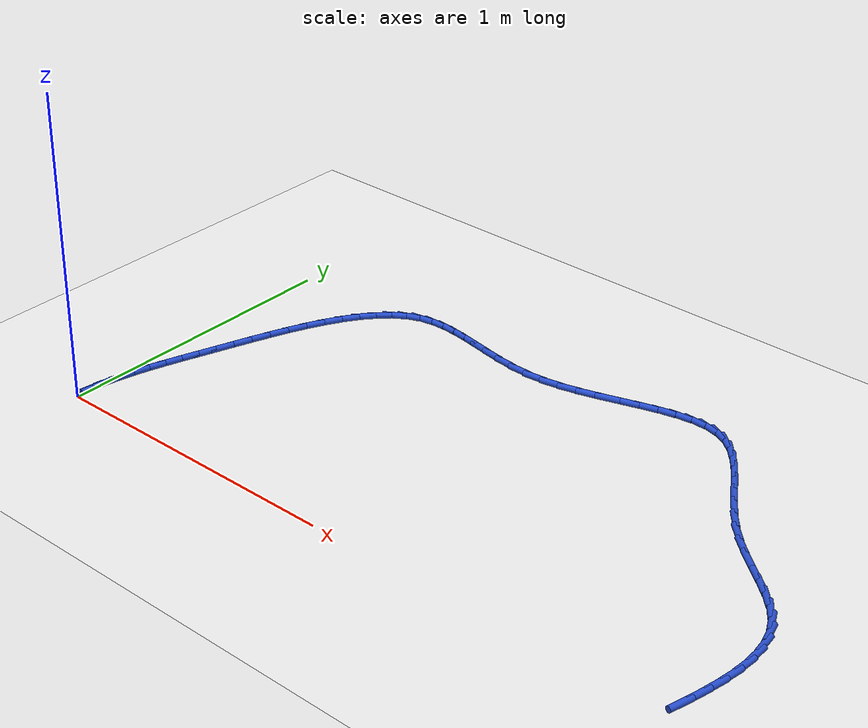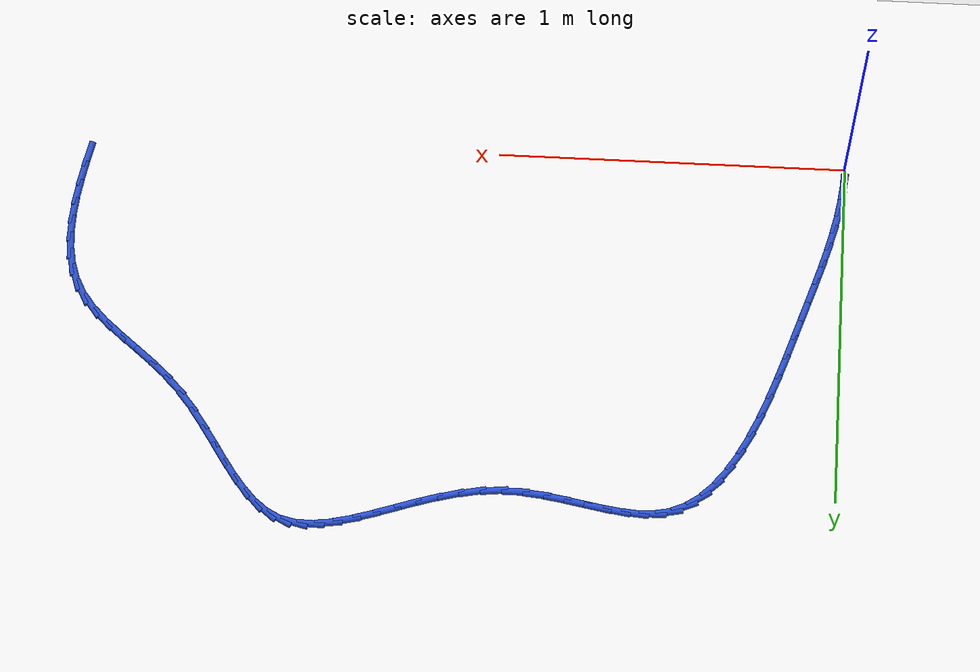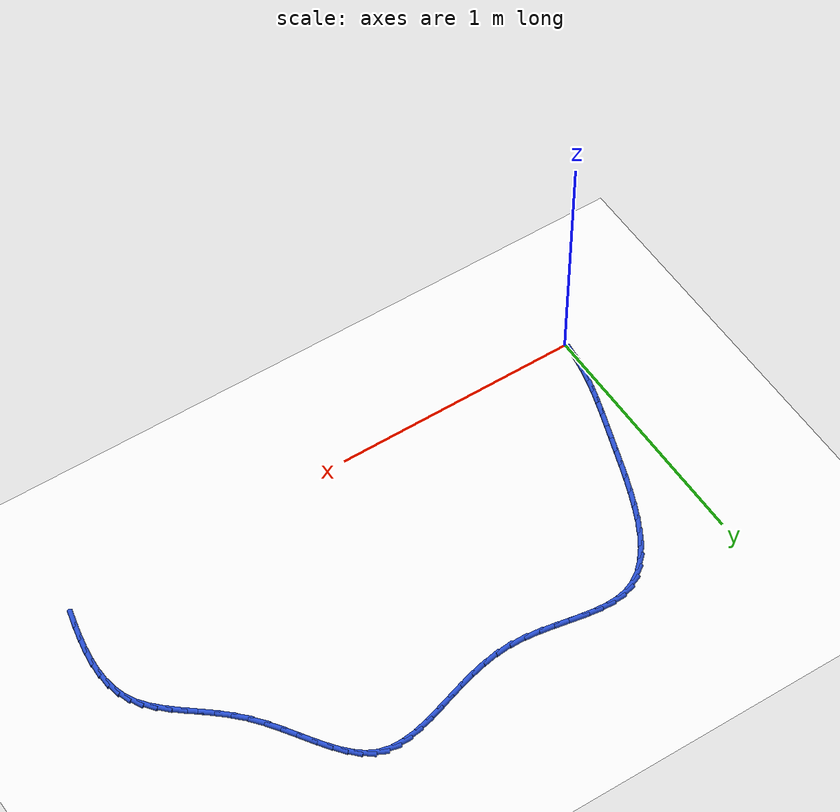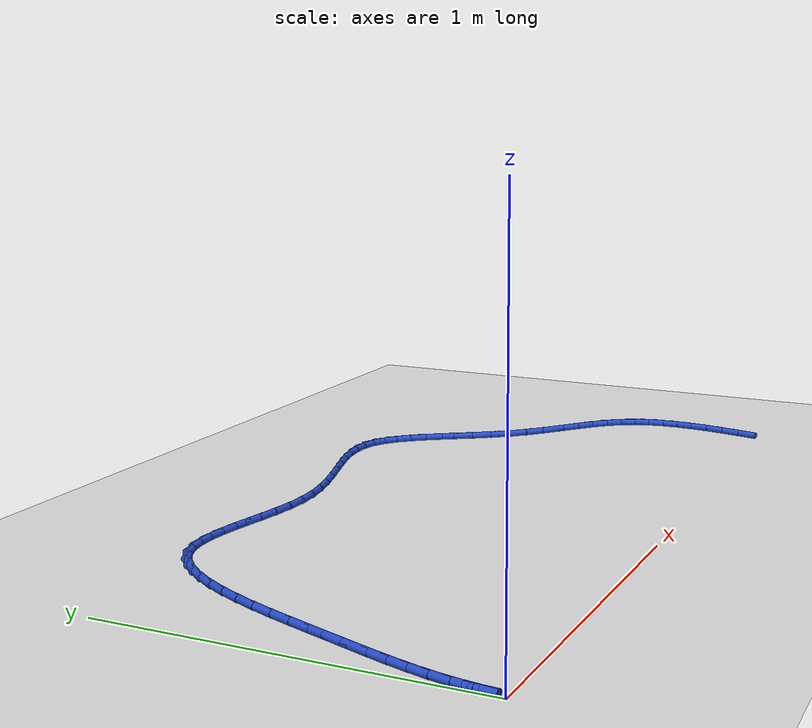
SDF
<sdf version="1.6">
 <world name="default">
  <model name="ground_plane">
   <static>1</static>
   <link name="link">
    <collision name="collision">
     <geometry><plane><normal>0 0 1</normal><size>100 100</size></plane></geometry>
     <surface><friction><ode><mu>100</mu><mu2>50</mu2></ode></friction></surface>
    </collision>
    <visual name="visual">
     <cast_shadows>0</cast_shadows>
     <geometry><plane><normal>0 0 1</normal><size>100 100</size></plane></geometry>
     <material>
      <script><uri>file://media/materials/scripts/gazebo.material</uri><name>Gazebo/WhiteGlow</name></script>
     </material>
    </visual>
   </link>
  </model>
  <model name="line">
   <link name="link_1">
    <pose>0.00370241914661093 0.053599085412505715 0.01 0 1.57 1.4375251185656093</pose>
    <collision name="collision">
     <geometry><cylinder><radius>0.01</radius><length>0.08</length></cylinder></geometry>
    </collision>
    <visual name="visual">
     <material>
      <script><name>Gazebo/Blue</name><uri>file://media/materials/scripts/gazebo.material</uri></script>
     </material>
     <geometry><cylinder><radius>0.01</radius><length>0.08</length></cylinder></geometry>
    </visual>
   </link>
   <link name="link_2">
    <pose>0.01079210150440693 0.10648116606670326 0.01 0 1.57 1.3811579953006534</pose>
    <collision name="collision">
     <geometry><cylinder><radius>0.01</radius><length>0.08</length></cylinder></geometry>
    </collision>
    <visual name="visual">
     <material>
      <script><name>Gazebo/Blue</name><uri>file://media/materials/scripts/gazebo.material</uri></script>
     </material>
     <geometry><cylinder><radius>0.01</radius><length>0.08</length></cylinder></geometry>
    </visual>
   </link>
   <link name="link_3">
    <pose>0.020874751084565796 0.15901006306544285 0.01 0 1.57 1.3339590005698805</pose>
    <collision name="collision">
     <geometry><cylinder><radius>0.01</radius><length>0.08</length></cylinder></geometry>
    </collision>
    <visual name="visual">
     <material>
      <script><name>Gazebo/Blue</name><uri>file://media/materials/scripts/gazebo.material</uri></script>
     </material>
     <geometry><cylinder><radius>0.01</radius><length>0.08</length></cylinder></geometry>
    </visual>
   </link>
   <link name="link_4">
    <pose>0.03355607189826538 0.21154959751157462 0.01 0 1.57 1.2965652068433773</pose>
    <collision name="collision">
     <geometry><cylinder><radius>0.01</radius><length>0.08</length></cylinder></geometry>
    </collision>
    <visual name="visual">
     <material>
      <script><name>Gazebo/Blue</name><uri>file://media/materials/scripts/gazebo.material</uri></script>
     </material>
     <geometry><cylinder><radius>0.01</radius><length>0.08</length></cylinder></geometry>
    </visual>
   </link>
   <link name="link_5">
    <pose>0.04844176795668357 0.26446359050794893 0.01 0 1.57 1.269110035139979</pose>
    <collision name="collision">
     <geometry><cylinder><radius>0.01</radius><length>0.08</length></cylinder></geometry>
    </collision>
    <visual name="visual">
     <material>
      <script><name>Gazebo/Blue</name><uri>file://media/materials/scripts/gazebo.material</uri></script>
     </material>
     <geometry><cylinder><radius>0.01</radius><length>0.08</length></cylinder></geometry>
    </visual>
   </link>
   <link name="link_6">
    <pose>0.06513754327099819 0.3181158631574158 0.01 0 1.57 1.251347061826769</pose>
    <collision name="collision">
     <geometry><cylinder><radius>0.01</radius><length>0.08</length></cylinder></geometry>
    </collision>
    <visual name="visual">
     <material>
      <script><name>Gazebo/Blue</name><uri>file://media/materials/scripts/gazebo.material</uri></script>
     </material>
     <geometry><cylinder><radius>0.01</radius><length>0.08</length></cylinder></geometry>
    </visual>
   </link>
   <link name="link_7">
    <pose>0.08324910185238708 0.37287023656282536 0.01 0 1.57 1.2427685363836052</pose>
    <collision name="collision">
     <geometry><cylinder><radius>0.01</radius><length>0.08</length></cylinder></geometry>
    </collision>
    <visual name="visual">
     <material>
      <script><name>Gazebo/Blue</name><uri>file://media/materials/scripts/gazebo.material</uri></script>
     </material>
     <geometry><cylinder><radius>0.01</radius><length>0.08</length></cylinder></geometry>
    </visual>
   </link>
   <link name="link_8">
    <pose>0.10238214771202817 0.42909053182702805 0.01 0 1.57 1.2425422428019877</pose>
    <collision name="collision">
     <geometry><cylinder><radius>0.01</radius><length>0.08</length></cylinder></geometry>
    </collision>
    <visual name="visual">
     <material>
      <script><name>Gazebo/Blue</name><uri>file://media/materials/scripts/gazebo.material</uri></script>
     </material>
     <geometry><cylinder><radius>0.01</radius><length>0.08</length></cylinder></geometry>
    </visual>
   </link>
   <link name="link_9">
    <pose>0.12214847034425556 0.4871285746936168 0.01 0 1.57 1.2433390880580024</pose>
    <collision name="collision">
     <geometry><cylinder><radius>0.01</radius><length>0.08</length></cylinder></geometry>
    </collision>
    <visual name="visual">
     <material>
      <script><name>Gazebo/Blue</name><uri>file://media/materials/scripts/gazebo.material</uri></script>
     </material>
     <geometry><cylinder><radius>0.01</radius><length>0.08</length></cylinder></geometry>
    </visual>
   </link>
   <link name="link_10">
    <pose>0.14242358597843852 0.5468163477234539 0.01 0 1.57 1.2362287823148563</pose>
    <collision name="collision">
     <geometry><cylinder><radius>0.01</radius><length>0.08</length></cylinder></geometry>
    </collision>
    <visual name="visual">
     <material>
      <script><name>Gazebo/Blue</name><uri>file://media/materials/scripts/gazebo.material</uri></script>
     </material>
     <geometry><cylinder><radius>0.01</radius><length>0.08</length></cylinder></geometry>
    </visual>
   </link>
   <link name="link_11">
    <pose>0.16344219406177563 0.6072778318896397 0.01 0 1.57 1.220675502819928</pose>
    <collision name="collision">
     <geometry><cylinder><radius>0.01</radius><length>0.08</length></cylinder></geometry>
    </collision>
    <visual name="visual">
     <material>
      <script><name>Gazebo/Blue</name><uri>file://media/materials/scripts/gazebo.material</uri></script>
     </material>
     <geometry><cylinder><radius>0.01</radius><length>0.08</length></cylinder></geometry>
    </visual>
   </link>
   <link name="link_12">
    <pose>0.18546474377744074 0.6675862517461271 0.01 0 1.57 1.1961911315846816</pose>
    <collision name="collision">
     <geometry><cylinder><radius>0.01</radius><length>0.08</length></cylinder></geometry>
    </collision>
    <visual name="visual">
     <material>
      <script><name>Gazebo/Blue</name><uri>file://media/materials/scripts/gazebo.material</uri></script>
     </material>
     <geometry><cylinder><radius>0.01</radius><length>0.08</length></cylinder></geometry>
    </visual>
   </link>
   <link name="link_13">
    <pose>0.20875168430860788 0.7268148318468685 0.01 0 1.57 1.161659060110564</pose>
    <collision name="collision">
     <geometry><cylinder><radius>0.01</radius><length>0.08</length></cylinder></geometry>
    </collision>
    <visual name="visual">
     <material>
      <script><name>Gazebo/Blue</name><uri>file://media/materials/scripts/gazebo.material</uri></script>
     </material>
     <geometry><cylinder><radius>0.01</radius><length>0.08</length></cylinder></geometry>
    </visual>
   </link>
   <link name="link_14">
    <pose>0.23356346483845086 0.7840367967458168 0.01 0 1.57 1.1152450169897161</pose>
    <collision name="collision">
     <geometry><cylinder><radius>0.01</radius><length>0.08</length></cylinder></geometry>
    </collision>
    <visual name="visual">
     <material>
      <script><name>Gazebo/Blue</name><uri>file://media/materials/scripts/gazebo.material</uri></script>
     </material>
     <geometry><cylinder><radius>0.01</radius><length>0.08</length></cylinder></geometry>
    </visual>
   </link>
   <link name="link_15">
    <pose>0.26016053455014376 0.8383253709969248 0.01 0 1.57 1.0542465577628295</pose>
    <collision name="collision">
     <geometry><cylinder><radius>0.01</radius><length>0.08</length></cylinder></geometry>
    </collision>
    <visual name="visual">
     <material>
      <script><name>Gazebo/Blue</name><uri>file://media/materials/scripts/gazebo.material</uri></script>
     </material>
     <geometry><cylinder><radius>0.01</radius><length>0.08</length></cylinder></geometry>
    </visual>
   </link>
   <link name="link_16">
    <pose>0.28880334262686047 0.8887537791541452 0.01 0 1.57 0.9749272984959388</pose>
    <collision name="collision">
     <geometry><cylinder><radius>0.01</radius><length>0.08</length></cylinder></geometry>
    </collision>
    <visual name="visual">
     <material>
      <script><name>Gazebo/Blue</name><uri>file://media/materials/scripts/gazebo.material</uri></script>
     </material>
     <geometry><cylinder><radius>0.01</radius><length>0.08</length></cylinder></geometry>
    </visual>
   </link>
   <link name="link_17">
    <pose>0.31975233825177485 0.9343952457714308 0.01 0 1.57 0.8724842844871181</pose>
    <collision name="collision">
     <geometry><cylinder><radius>0.01</radius><length>0.08</length></cylinder></geometry>
    </collision>
    <visual name="visual">
     <material>
      <script><name>Gazebo/Blue</name><uri>file://media/materials/scripts/gazebo.material</uri></script>
     </material>
     <geometry><cylinder><radius>0.01</radius><length>0.08</length></cylinder></geometry>
    </visual>
   </link>
   <link name="link_18">
    <pose>0.3532679706080609 0.9743229954027341 0.01 0 1.57 0.7415448927641082</pose>
    <collision name="collision">
     <geometry><cylinder><radius>0.01</radius><length>0.08</length></cylinder></geometry>
    </collision>
    <visual name="visual">
     <material>
      <script><name>Gazebo/Blue</name><uri>file://media/materials/scripts/gazebo.material</uri></script>
     </material>
     <geometry><cylinder><radius>0.01</radius><length>0.08</length></cylinder></geometry>
    </visual>
   </link>
   <link name="link_19">
    <pose>0.38961068887889255 1.007610252602008 0.01 0 1.57 0.5779839004604687</pose>
    <collision name="collision">
     <geometry><cylinder><radius>0.01</radius><length>0.08</length></cylinder></geometry>
    </collision>
    <visual name="visual">
     <material>
      <script><name>Gazebo/Blue</name><uri>file://media/materials/scripts/gazebo.material</uri></script>
     </material>
     <geometry><cylinder><radius>0.01</radius><length>0.08</length></cylinder></geometry>
    </visual>
   </link>
   <link name="link_20">
    <pose>0.4290409422474439 1.0333302419232053 0.01 0 1.57 0.3828181957107427</pose>
    <collision name="collision">
     <geometry><cylinder><radius>0.01</radius><length>0.08</length></cylinder></geometry>
    </collision>
    <visual name="visual">
     <material>
      <script><name>Gazebo/Blue</name><uri>file://media/materials/scripts/gazebo.material</uri></script>
     </material>
     <geometry><cylinder><radius>0.01</radius><length>0.08</length></cylinder></geometry>
    </visual>
   </link>
   <link name="link_21">
    <pose>0.47181914279150955 1.0505563472372728 0.01 0 1.57 0.17891611258260387</pose>
    <collision name="collision">
     <geometry><cylinder><radius>0.01</radius><length>0.08</length></cylinder></geometry>
    </collision>
    <visual name="visual">
     <material>
      <script><name>Gazebo/Blue</name><uri>file://media/materials/scripts/gazebo.material</uri></script>
     </material>
     <geometry><cylinder><radius>0.01</radius><length>0.08</length></cylinder></geometry>
    </visual>
   </link>
   <link name="link_22">
    <pose>0.518075318266826 1.0589217752459952 0.01 0 1.57 0.0192712979253179</pose>
    <collision name="collision">
     <geometry><cylinder><radius>0.01</radius><length>0.08</length></cylinder></geometry>
    </collision>
    <visual name="visual">
     <material>
      <script><name>Gazebo/Blue</name><uri>file://media/materials/scripts/gazebo.material</uri></script>
     </material>
     <geometry><cylinder><radius>0.01</radius><length>0.08</length></cylinder></geometry>
    </visual>
   </link>
   <link name="link_23">
    <pose>0.5675167866807691 1.0598746944825637 0.01 0 1.57 -0.08865490815868532</pose>
    <collision name="collision">
     <geometry><cylinder><radius>0.01</radius><length>0.08</length></cylinder></geometry>
    </collision>
    <visual name="visual">
     <material>
      <script><name>Gazebo/Blue</name><uri>file://media/materials/scripts/gazebo.material</uri></script>
     </material>
     <geometry><cylinder><radius>0.01</radius><length>0.08</length></cylinder></geometry>
    </visual>
   </link>
   <link name="link_24">
    <pose>0.6197653545707781 1.055230428613643 0.01 0 1.57 -0.1529031658166887</pose>
    <collision name="collision">
     <geometry><cylinder><radius>0.01</radius><length>0.08</length></cylinder></geometry>
    </collision>
    <visual name="visual">
     <material>
      <script><name>Gazebo/Blue</name><uri>file://media/materials/scripts/gazebo.material</uri></script>
     </material>
     <geometry><cylinder><radius>0.01</radius><length>0.08</length></cylinder></geometry>
    </visual>
   </link>
   <link name="link_25">
    <pose>0.6744428284742938 1.0468043013058992 0.01 0 1.57 -0.18119181963782197</pose>
    <collision name="collision">
     <geometry><cylinder><radius>0.01</radius><length>0.08</length></cylinder></geometry>
    </collision>
    <visual name="visual">
     <material>
      <script><name>Gazebo/Blue</name><uri>file://media/materials/scripts/gazebo.material</uri></script>
     </material>
     <geometry><cylinder><radius>0.01</radius><length>0.08</length></cylinder></geometry>
    </visual>
   </link>
   <link name="link_26">
    <pose>0.7311710149287552 1.0364116362259974 0.01 0 1.57 -0.17861952065181125</pose>
    <collision name="collision">
     <geometry><cylinder><radius>0.01</radius><length>0.08</length></cylinder></geometry>
    </collision>
    <visual name="visual">
     <material>
      <script><name>Gazebo/Blue</name><uri>file://media/materials/scripts/gazebo.material</uri></script>
     </material>
     <geometry><cylinder><radius>0.01</radius><length>0.08</length></cylinder></geometry>
    </visual>
   </link>
   <link name="link_27">
    <pose>0.7895717204716026 1.0258677570406034 0.01 0 1.57 -0.1476694219695586</pose>
    <collision name="collision">
     <geometry><cylinder><radius>0.01</radius><length>0.08</length></cylinder></geometry>
    </collision>
    <visual name="visual">
     <material>
      <script><name>Gazebo/Blue</name><uri>file://media/materials/scripts/gazebo.material</uri></script>
     </material>
     <geometry><cylinder><radius>0.01</radius><length>0.08</length></cylinder></geometry>
    </visual>
   </link>
   <link name="link_28">
    <pose>0.8492667516402761 1.0169879874163825 0.01 0 1.57 -0.08886339841261942</pose>
    <collision name="collision">
     <geometry><cylinder><radius>0.01</radius><length>0.08</length></cylinder></geometry>
    </collision>
    <visual name="visual">
     <material>
      <script><name>Gazebo/Blue</name><uri>file://media/materials/scripts/gazebo.material</uri></script>
     </material>
     <geometry><cylinder><radius>0.01</radius><length>0.08</length></cylinder></geometry>
    </visual>
   </link>
   <link name="link_29">
    <pose>0.9098779149722152 1.0115876510200006 0.01 0 1.57 -0.0017265901271118474</pose>
    <collision name="collision">
     <geometry><cylinder><radius>0.01</radius><length>0.08</length></cylinder></geometry>
    </collision>
    <visual name="visual">
     <material>
      <script><name>Gazebo/Blue</name><uri>file://media/materials/scripts/gazebo.material</uri></script>
     </material>
     <geometry><cylinder><radius>0.01</radius><length>0.08</length></cylinder></geometry>
    </visual>
   </link>
   <link name="link_30">
    <pose>0.9710270170051655 1.0114820714792339 0.01 0 1.57 0.1044767446829128</pose>
    <collision name="collision">
     <geometry><cylinder><radius>0.01</radius><length>0.08</length></cylinder></geometry>
    </collision>
    <visual name="visual">
     <material>
      <script><name>Gazebo/Blue</name><uri>file://media/materials/scripts/gazebo.material</uri></script>
     </material>
     <geometry><cylinder><radius>0.01</radius><length>0.08</length></cylinder></geometry>
    </visual>
   </link>
   <link name="link_31">
    <pose>1.0323403855171538 1.0179113021877708 0.01 0 1.57 0.19277745873178534</pose>
    <collision name="collision">
     <geometry><cylinder><radius>0.01</radius><length>0.08</length></cylinder></geometry>
    </collision>
    <visual name="visual">
     <material>
      <script><name>Gazebo/Blue</name><uri>file://media/materials/scripts/gazebo.material</uri></script>
     </material>
     <geometry><cylinder><radius>0.01</radius><length>0.08</length></cylinder></geometry>
    </visual>
   </link>
   <link name="link_32">
    <pose>1.093462212687946 1.0298423789747437 0.01 0 1.57 0.25573015447963643</pose>
    <collision name="collision">
     <geometry><cylinder><radius>0.01</radius><length>0.08</length></cylinder></geometry>
    </collision>
    <visual name="visual">
     <material>
      <script><name>Gazebo/Blue</name><uri>file://media/materials/scripts/gazebo.material</uri></script>
     </material>
     <geometry><cylinder><radius>0.01</radius><length>0.08</length></cylinder></geometry>
    </visual>
   </link>
   <link name="link_33">
    <pose>1.154041102328727 1.045681013767031 0.01 0 1.57 0.29524208986204853</pose>
    <collision name="collision">
     <geometry><cylinder><radius>0.01</radius><length>0.08</length></cylinder></geometry>
    </collision>
    <visual name="visual">
     <material>
      <script><name>Gazebo/Blue</name><uri>file://media/materials/scripts/gazebo.material</uri></script>
     </material>
     <geometry><cylinder><radius>0.01</radius><length>0.08</length></cylinder></geometry>
    </visual>
   </link>
   <link name="link_34">
    <pose>1.213725658250679 1.0638329184915094 0.01 0 1.57 0.312346685942587</pose>
    <collision name="collision">
     <geometry><cylinder><radius>0.01</radius><length>0.08</length></cylinder></geometry>
    </collision>
    <visual name="visual">
     <material>
      <script><name>Gazebo/Blue</name><uri>file://media/materials/scripts/gazebo.material</uri></script>
     </material>
     <geometry><cylinder><radius>0.01</radius><length>0.08</length></cylinder></geometry>
    </visual>
   </link>
   <link name="link_35">
    <pose>1.2721644842649862 1.082703805075056 0.01 0 1.57 0.3066077033072957</pose>
    <collision name="collision">
     <geometry><cylinder><radius>0.01</radius><length>0.08</length></cylinder></geometry>
    </collision>
    <visual name="visual">
     <material>
      <script><name>Gazebo/Blue</name><uri>file://media/materials/scripts/gazebo.material</uri></script>
     </material>
     <geometry><cylinder><radius>0.01</radius><length>0.08</length></cylinder></geometry>
    </visual>
   </link>
   <link name="link_36">
    <pose>1.3290061841828305 1.1006993854445468 0.01 0 1.57 0.27564028295304865</pose>
    <collision name="collision">
     <geometry><cylinder><radius>0.01</radius><length>0.08</length></cylinder></geometry>
    </collision>
    <visual name="visual">
     <material>
      <script><name>Gazebo/Blue</name><uri>file://media/materials/scripts/gazebo.material</uri></script>
     </material>
     <geometry><cylinder><radius>0.01</radius><length>0.08</length></cylinder></geometry>
    </visual>
   </link>
   <link name="link_37">
    <pose>1.3838993618153965 1.1162253715268606 0.01 0 1.57 0.21458326684674334</pose>
    <collision name="collision">
     <geometry><cylinder><radius>0.01</radius><length>0.08</length></cylinder></geometry>
    </collision>
    <visual name="visual">
     <material>
      <script><name>Gazebo/Blue</name><uri>file://media/materials/scripts/gazebo.material</uri></script>
     </material>
     <geometry><cylinder><radius>0.01</radius><length>0.08</length></cylinder></geometry>
    </visual>
   </link>
   <link name="link_38">
    <pose>1.4364926209738664 1.127687475248873 0.01 0 1.57 0.11569462338838375</pose>
    <collision name="collision">
     <geometry><cylinder><radius>0.01</radius><length>0.08</length></cylinder></geometry>
    </collision>
    <visual name="visual">
     <material>
      <script><name>Gazebo/Blue</name><uri>file://media/materials/scripts/gazebo.material</uri></script>
     </material>
     <geometry><cylinder><radius>0.01</radius><length>0.08</length></cylinder></geometry>
    </visual>
   </link>
   <link name="link_39">
    <pose>1.486434565469425 1.133491408537462 0.01 0 1.57 -0.03084979347113253</pose>
    <collision name="collision">
     <geometry><cylinder><radius>0.01</radius><length>0.08</length></cylinder></geometry>
    </collision>
    <visual name="visual">
     <material>
      <script><name>Gazebo/Blue</name><uri>file://media/materials/scripts/gazebo.material</uri></script>
     </material>
     <geometry><cylinder><radius>0.01</radius><length>0.08</length></cylinder></geometry>
    </visual>
   </link>
   <link name="link_40">
    <pose>1.5333737991132537 1.132042883319504 0.01 0 1.57 -0.2319589570000695</pose>
    <collision name="collision">
     <geometry><cylinder><radius>0.01</radius><length>0.08</length></cylinder></geometry>
    </collision>
    <visual name="visual">
     <material>
      <script><name>Gazebo/Blue</name><uri>file://media/materials/scripts/gazebo.material</uri></script>
     </material>
     <geometry><cylinder><radius>0.01</radius><length>0.08</length></cylinder></geometry>
    </visual>
   </link>
   <link name="link_41">
    <pose>1.5769589257165368 1.1217476115218765 0.01 0 1.57 -0.47452371342408867</pose>
    <collision name="collision">
     <geometry><cylinder><radius>0.01</radius><length>0.08</length></cylinder></geometry>
    </collision>
    <visual name="visual">
     <material>
      <script><name>Gazebo/Blue</name><uri>file://media/materials/scripts/gazebo.material</uri></script>
     </material>
     <geometry><cylinder><radius>0.01</radius><length>0.08</length></cylinder></geometry>
    </visual>
   </link>
   <link name="link_42">
    <pose>1.616915717623525 1.1012230059131065 0.01 0 1.57 -0.6856383464548094</pose>
    <collision name="collision">
     <geometry><cylinder><radius>0.01</radius><length>0.08</length></cylinder></geometry>
    </collision>
    <visual name="visual">
     <material>
      <script><name>Gazebo/Blue</name><uri>file://media/materials/scripts/gazebo.material</uri></script>
     </material>
     <geometry><cylinder><radius>0.01</radius><length>0.08</length></cylinder></geometry>
    </visual>
   </link>
   <link name="link_43">
    <pose>1.653712101435156 1.0711224733972817 0.01 0 1.57 -0.8318885255579349</pose>
    <collision name="collision">
     <geometry><cylinder><radius>0.01</radius><length>0.08</length></cylinder></geometry>
    </collision>
    <visual name="visual">
     <material>
      <script><name>Gazebo/Blue</name><uri>file://media/materials/scripts/gazebo.material</uri></script>
     </material>
     <geometry><cylinder><radius>0.01</radius><length>0.08</length></cylinder></geometry>
    </visual>
   </link>
   <link name="link_44">
    <pose>1.688230230095677 1.0332357916507033 0.01 0 1.57 -0.9240424595907415</pose>
    <collision name="collision">
     <geometry><cylinder><radius>0.01</radius><length>0.08</length></cylinder></geometry>
    </collision>
    <visual name="visual">
     <material>
      <script><name>Gazebo/Blue</name><uri>file://media/materials/scripts/gazebo.material</uri></script>
     </material>
     <geometry><cylinder><radius>0.01</radius><length>0.08</length></cylinder></geometry>
    </visual>
   </link>
   <link name="link_45">
    <pose>1.7213567633169533 0.9893651020225313 0.01 0 1.57 -0.9743905165372679</pose>
    <collision name="collision">
     <geometry><cylinder><radius>0.01</radius><length>0.08</length></cylinder></geometry>
    </collision>
    <visual name="visual">
     <material>
      <script><name>Gazebo/Blue</name><uri>file://media/materials/scripts/gazebo.material</uri></script>
     </material>
     <geometry><cylinder><radius>0.01</radius><length>0.08</length></cylinder></geometry>
    </visual>
   </link>
   <link name="link_46">
    <pose>1.7539783608108508 0.9413125458619243 0.01 0 1.57 -0.9913281156356554</pose>
    <collision name="collision">
     <geometry><cylinder><radius>0.01</radius><length>0.08</length></cylinder></geometry>
    </collision>
    <visual name="visual">
     <material>
      <script><name>Gazebo/Blue</name><uri>file://media/materials/scripts/gazebo.material</uri></script>
     </material>
     <geometry><cylinder><radius>0.01</radius><length>0.08</length></cylinder></geometry>
    </visual>
   </link>
   <link name="link_47">
    <pose>1.7869816822892346 0.8908802645180428 0.01 0 1.57 -0.9792040181359207</pose>
    <collision name="collision">
     <geometry><cylinder><radius>0.01</radius><length>0.08</length></cylinder></geometry>
    </collision>
    <visual name="visual">
     <material>
      <script><name>Gazebo/Blue</name><uri>file://media/materials/scripts/gazebo.material</uri></script>
     </material>
     <geometry><cylinder><radius>0.01</radius><length>0.08</length></cylinder></geometry>
    </visual>
   </link>
   <link name="link_48">
    <pose>1.8212533874639696 0.8398703993400467 0.01 0 1.57 -0.9391256471419868</pose>
    <collision name="collision">
     <geometry><cylinder><radius>0.01</radius><length>0.08</length></cylinder></geometry>
    </collision>
    <visual name="visual">
     <material>
      <script><name>Gazebo/Blue</name><uri>file://media/materials/scripts/gazebo.material</uri></script>
     </material>
     <geometry><cylinder><radius>0.01</radius><length>0.08</length></cylinder></geometry>
    </visual>
   </link>
   <link name="link_49">
    <pose>1.857680136046921 0.7900850916770947 0.01 0 1.57 -0.8697481720892789</pose>
    <collision name="collision">
     <geometry><cylinder><radius>0.01</radius><length>0.08</length></cylinder></geometry>
    </collision>
    <visual name="visual">
     <material>
      <script><name>Gazebo/Blue</name><uri>file://media/materials/scripts/gazebo.material</uri></script>
     </material>
     <geometry><cylinder><radius>0.01</radius><length>0.08</length></cylinder></geometry>
    </visual>
   </link>
   <link name="link_50">
    <pose>1.8971484027442052 0.7433262705885798 0.01 0 1.57 -0.7817276093969172</pose>
    <collision name="collision">
     <geometry><cylinder><radius>0.01</radius><length>0.08</length></cylinder></geometry>
    </collision>
    <visual name="visual">
     <material>
      <script><name>Gazebo/Blue</name><uri>file://media/materials/scripts/gazebo.material</uri></script>
     </material>
     <geometry><cylinder><radius>0.01</radius><length>0.08</length></cylinder></geometry>
    </visual>
   </link>
   <link name="link_51">
    <pose>1.9400080482429864 0.7007801131094601 0.01 0 1.57 -0.7167891586004655</pose>
    <collision name="collision">
     <geometry><cylinder><radius>0.01</radius><length>0.08</length></cylinder></geometry>
    </collision>
    <visual name="visual">
     <material>
      <script><name>Gazebo/Blue</name><uri>file://media/materials/scripts/gazebo.material</uri></script>
     </material>
     <geometry><cylinder><radius>0.01</radius><length>0.08</length></cylinder></geometry>
    </visual>
   </link>
   <link name="link_52">
    <pose>1.9848946968891326 0.6616657502038887 0.01 0 1.57 -0.6839683358835331</pose>
    <collision name="collision">
     <geometry><cylinder><radius>0.01</radius><length>0.08</length></cylinder></geometry>
    </collision>
    <visual name="visual">
     <material>
      <script><name>Gazebo/Blue</name><uri>file://media/materials/scripts/gazebo.material</uri></script>
     </material>
     <geometry><cylinder><radius>0.01</radius><length>0.08</length></cylinder></geometry>
    </visual>
   </link>
   <link name="link_53">
    <pose>2.030102394757265 0.624810359766223 0.01 0 1.57 -0.6845559687837218</pose>
    <collision name="collision">
     <geometry><cylinder><radius>0.01</radius><length>0.08</length></cylinder></geometry>
    </collision>
    <visual name="visual">
     <material>
      <script><name>Gazebo/Blue</name><uri>file://media/materials/scripts/gazebo.material</uri></script>
     </material>
     <geometry><cylinder><radius>0.01</radius><length>0.08</length></cylinder></geometry>
    </visual>
   </link>
   <link name="link_54">
    <pose>2.0739251879220024 0.5890411196908191 0.01 0 1.57 -0.7218182236898099</pose>
    <collision name="collision">
     <geometry><cylinder><radius>0.01</radius><length>0.08</length></cylinder></geometry>
    </collision>
    <visual name="visual">
     <material>
      <script><name>Gazebo/Blue</name><uri>file://media/materials/scripts/gazebo.material</uri></script>
     </material>
     <geometry><cylinder><radius>0.01</radius><length>0.08</length></cylinder></geometry>
    </visual>
   </link>
   <link name="link_55">
    <pose>2.114657122457967 0.5531852078720347 0.01 0 1.57 -0.8015538440630678</pose>
    <collision name="collision">
     <geometry><cylinder><radius>0.01</radius><length>0.08</length></cylinder></geometry>
    </collision>
    <visual name="visual">
     <material>
      <script><name>Gazebo/Blue</name><uri>file://media/materials/scripts/gazebo.material</uri></script>
     </material>
     <geometry><cylinder><radius>0.01</radius><length>0.08</length></cylinder></geometry>
    </visual>
   </link>
   <link name="link_56">
    <pose>2.1505922444397774 0.5160698022042272 0.01 0 1.57 -0.9310022497718039</pose>
    <collision name="collision">
     <geometry><cylinder><radius>0.01</radius><length>0.08</length></cylinder></geometry>
    </collision>
    <visual name="visual">
     <material>
      <script><name>Gazebo/Blue</name><uri>file://media/materials/scripts/gazebo.material</uri></script>
     </material>
     <geometry><cylinder><radius>0.01</radius><length>0.08</length></cylinder></geometry>
    </visual>
   </link>
   <link name="link_57">
    <pose>2.1800245999420556 0.4765220805817531 0.01 0 1.57 -1.1049852702454261</pose>
    <collision name="collision">
     <geometry><cylinder><radius>0.01</radius><length>0.08</length></cylinder></geometry>
    </collision>
    <visual name="visual">
     <material>
      <script><name>Gazebo/Blue</name><uri>file://media/materials/scripts/gazebo.material</uri></script>
     </material>
     <geometry><cylinder><radius>0.01</radius><length>0.08</length></cylinder></geometry>
    </visual>
   </link>
   <link name="link_58">
    <pose>2.201609269869895 0.4335852216743295 0.01 0 1.57 -1.275273091438507</pose>
    <collision name="collision">
     <geometry><cylinder><radius>0.01</radius><length>0.08</length></cylinder></geometry>
    </collision>
    <visual name="visual">
     <material>
      <script><name>Gazebo/Blue</name><uri>file://media/materials/scripts/gazebo.material</uri></script>
     </material>
     <geometry><cylinder><radius>0.01</radius><length>0.08</length></cylinder></geometry>
    </visual>
   </link>
   <link name="link_59">
    <pose>2.2156953940399604 0.3873159297384587 0.01 0 1.57 -1.4209937993773063</pose>
    <collision name="collision">
     <geometry><cylinder><radius>0.01</radius><length>0.08</length></cylinder></geometry>
    </collision>
    <visual name="visual">
     <material>
      <script><name>Gazebo/Blue</name><uri>file://media/materials/scripts/gazebo.material</uri></script>
     </material>
     <geometry><cylinder><radius>0.01</radius><length>0.08</length></cylinder></geometry>
    </visual>
   </link>
   <link name="link_60">
    <pose>2.2231285554209785 0.3380679222180613 0.01 0 1.57 -1.5394637600941175</pose>
    <collision name="collision">
     <geometry><cylinder><radius>0.01</radius><length>0.08</length></cylinder></geometry>
    </collision>
    <visual name="visual">
     <material>
      <script><name>Gazebo/Blue</name><uri>file://media/materials/scripts/gazebo.material</uri></script>
     </material>
     <geometry><cylinder><radius>0.01</radius><length>0.08</length></cylinder></geometry>
    </visual>
   </link>
   <link name="link_61">
    <pose>2.2247544007177593 0.2861949546892315 0.01 0 1.57 1.5092640723317206</pose>
    <collision name="collision">
     <geometry><cylinder><radius>0.01</radius><length>0.08</length></cylinder></geometry>
    </collision>
    <visual name="visual">
     <material>
      <script><name>Gazebo/Blue</name><uri>file://media/materials/scripts/gazebo.material</uri></script>
     </material>
     <geometry><cylinder><radius>0.01</radius><length>0.08</length></cylinder></geometry>
    </visual>
   </link>
   <link name="link_62">
    <pose>2.221418576635112 0.2320507827280634 0.01 0 1.57 1.4386485441473376</pose>
    <collision name="collision">
     <geometry><cylinder><radius>0.01</radius><length>0.08</length></cylinder></geometry>
    </collision>
    <visual name="visual">
     <material>
      <script><name>Gazebo/Blue</name><uri>file://media/materials/scripts/gazebo.material</uri></script>
     </material>
     <geometry><cylinder><radius>0.01</radius><length>0.08</length></cylinder></geometry>
    </visual>
   </link>
   <link name="link_63">
    <pose>2.2139667298778445 0.17598916191065175 0.01 0 1.57 1.3868321715872127</pose>
    <collision name="collision">
     <geometry><cylinder><radius>0.01</radius><length>0.08</length></cylinder></geometry>
    </collision>
    <visual name="visual">
     <material>
      <script><name>Gazebo/Blue</name><uri>file://media/materials/scripts/gazebo.material</uri></script>
     </material>
     <geometry><cylinder><radius>0.01</radius><length>0.08</length></cylinder></geometry>
    </visual>
   </link>
   <link name="link_64">
    <pose>2.2032445071507682 0.11836384781309163 0.01 0 1.57 1.3509542054590638</pose>
    <collision name="collision">
     <geometry><cylinder><radius>0.01</radius><length>0.08</length></cylinder></geometry>
    </collision>
    <visual name="visual">
     <material>
      <script><name>Gazebo/Blue</name><uri>file://media/materials/scripts/gazebo.material</uri></script>
     </material>
     <geometry><cylinder><radius>0.01</radius><length>0.08</length></cylinder></geometry>
    </visual>
   </link>
   <link name="link_65">
    <pose>2.19009755515869 0.059528596011477 0.01 0 1.57 1.3289234575494269</pose>
    <collision name="collision">
     <geometry><cylinder><radius>0.01</radius><length>0.08</length></cylinder></geometry>
    </collision>
    <visual name="visual">
     <material>
      <script><name>Gazebo/Blue</name><uri>file://media/materials/scripts/gazebo.material</uri></script>
     </material>
     <geometry><cylinder><radius>0.01</radius><length>0.08</length></cylinder></geometry>
    </visual>
   </link>
   <link name="link_131">
    <pose>0.00378329557638599 0.05347366969833893 0.01 0 1.57 1.5001633990319183</pose>
    <collision name="collision">
     <geometry><cylinder><radius>0.01</radius><length>0.08</length></cylinder></geometry>
    </collision>
    <visual name="visual">
     <material>
      <script><name>Gazebo/Blue</name><uri>file://media/materials/scripts/gazebo.material</uri></script>
     </material>
     <geometry><cylinder><radius>0.01</radius><length>0.08</length></cylinder></geometry>
    </visual>
   </link>
  </model>
 </world>
</sdf>
